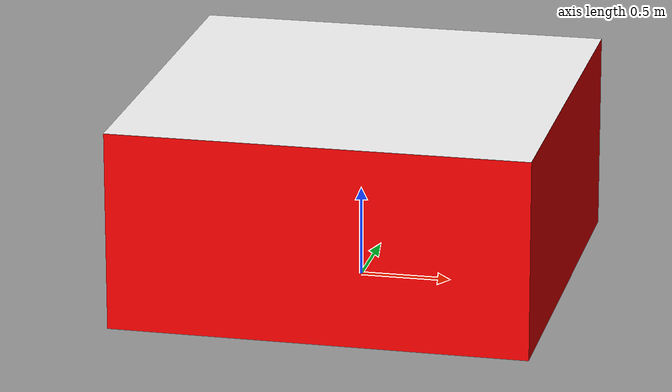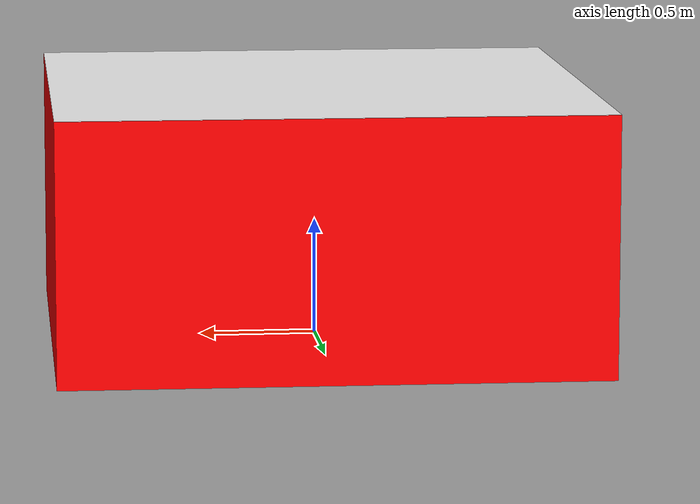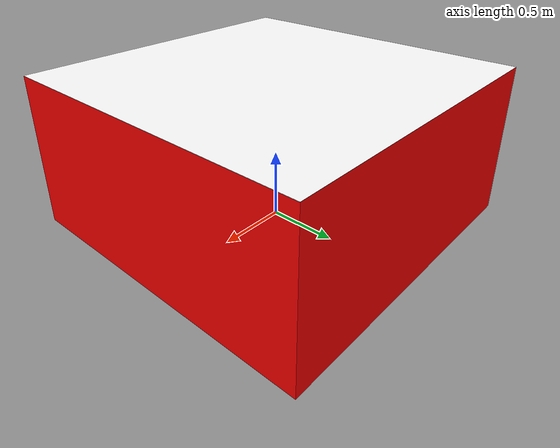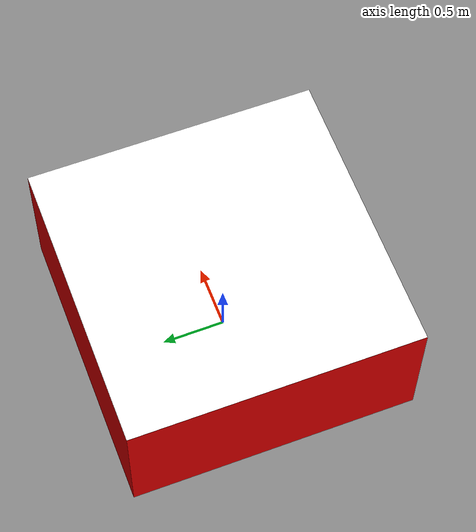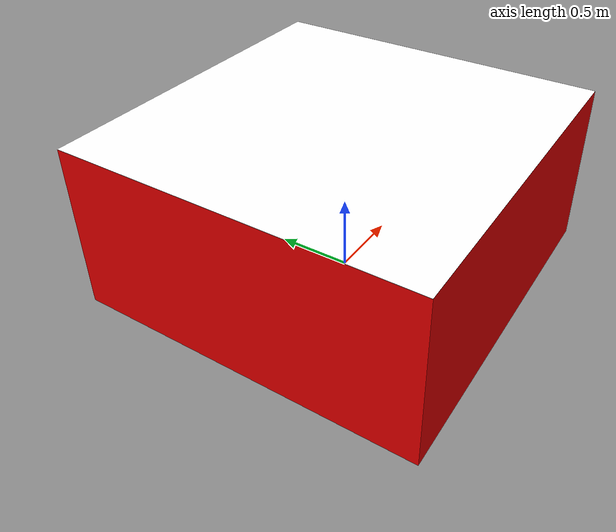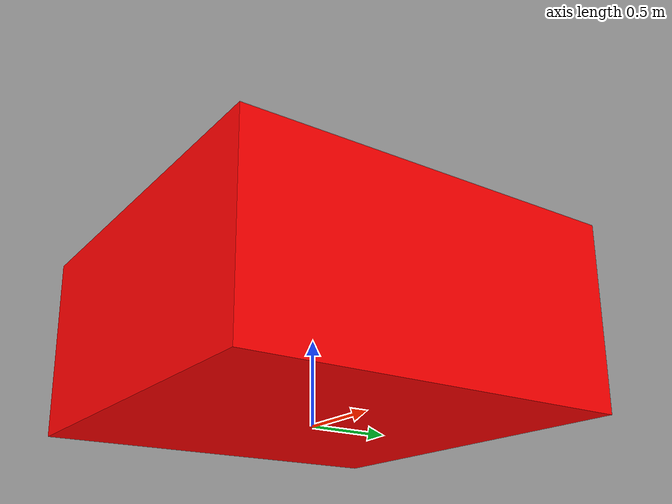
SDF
<?xml version="1.0" encoding="UTF-8"?>
<!-- |    This document was autogenerated by xacro4sdf from model.sdf.xacro            | -->
<!-- |    EDITING THIS FILE BY HAND IS NOT RECOMMENDED                                 | -->
<sdf version="1.7">
	<!--macro defination:rmuc21_resource_island_link-->
	<model name="rmuc21_landing_pad">
		<static>1</static>
		<link name="red_landing_pad">
			<pose>0 0 0 0 0 0</pose>
			<visual name="visual">
				<pose>0 0 0.55 0 0 0</pose>
				<geometry>
					<box>
						<size>2.3 2.3 1.1</size>
					</box>
				</geometry>
				<material>
					<ambient>1 0 0 1</ambient>
					<diffuse>1 0 0 1</diffuse>
					<specular>1 0 0 1</specular>
				</material>
			</visual>
			<visual name="sticker_visual">
				<pose>0 0 1.101 0 0 0</pose>
				<geometry>
					<plane>
						<normal>0 0 1</normal>
						<size>2.3 2.3</size>
					</plane>
				</geometry>
				<material>
					<diffuse>1.0 1.0 1.0</diffuse>
					<pbr>
						<metal>
							<albedo_map>model://rmuc21_landing_pad/materials/textures/landing_pad.png</albedo_map>
						</metal>
					</pbr>
				</material>
			</visual>
			<collision name="collision">
				<pose>0 0 0.55 0 0 0</pose>
				<geometry>
					<box>
						<size>2.3 2.3 1.1</size>
					</box>
				</geometry>
			</collision>
		</link>
	</model>
</sdf>
